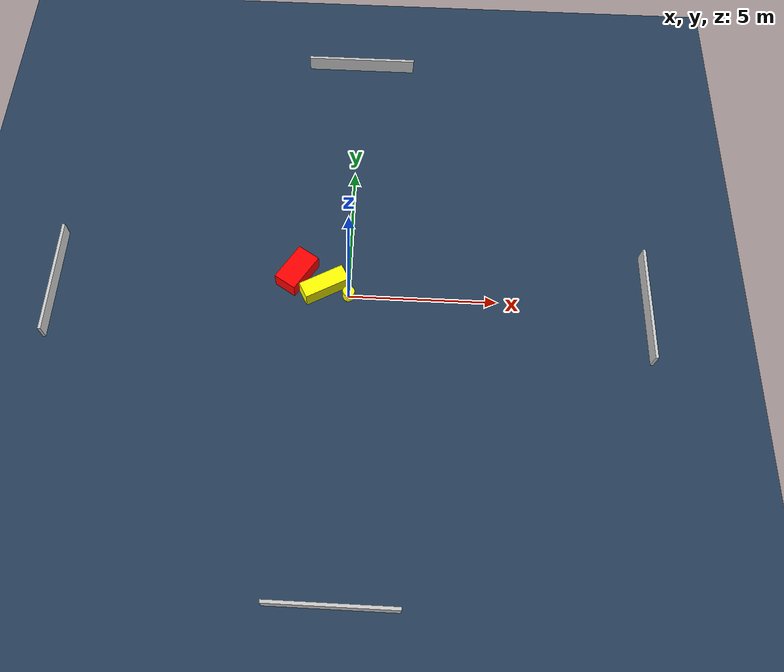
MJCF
<?xml version="1.0" ?>
<mujoco model="generated_environment">
  <option timestep="0.01" integrator="RK4" cone="elliptic"/>
  <default>
    <geom density="1"/>
  </default>
  <asset>
    <texture builtin="gradient" height="3072" name="skybox" rgb1="0.3 0.5 0.7" rgb2="0 0 0" type="skybox" width="512"/>
    <texture builtin="checker" height="300" name="groundplane" rgb1="0.2 0.3 0.4" rgb2="0.1 0.2 0.3" type="2d" width="300"/>
    <material name="groundplane" reflectance="0.2" texrepeat="5 5" texture="groundplane"/>
  </asset>
  <worldbody>
    <light dir="0 0 -1" directional="true" pos="0 0 1.5"/>
    <geom condim="3" friction="0.5 0.005 0.001" material="groundplane" name="floor" pos="0 0 0" size="0 0 0.05" type="plane"/>
    <body name="walls">
      <geom name="wall_1" condim="4" pos="-10.0 0.0 0.3" rgba="0.800000011920929 0.800000011920929 0.800000011920929 1.0" size="0.05 2.0 0.3" type="box"/>
      <geom name="wall_2" condim="4" pos="10.0 0.0 0.3" rgba="0.800000011920929 0.800000011920929 0.800000011920929 1.0" size="0.05 2.0 0.3" type="box"/>
      <geom name="wall_3" condim="4" pos="0.0 -10.0 0.3" rgba="0.800000011920929 0.800000011920929 0.800000011920929 1.0" size="2.0 0.05 0.3" type="box"/>
      <geom name="wall_4" condim="4" pos="0.0 10.0 0.3" rgba="0.800000011920929 0.800000011920929 0.800000011920929 1.0" size="2.0 0.05 0.3" type="box"/>
    </body>
    <body name="robot">
      <joint name="joint_x" type="slide" pos="0 0 0" axis="1 0 0"/>
      <joint name="joint_y" type="slide" pos="0 0 0" axis="0 1 0"/>
      <geom name="robot" type="cylinder" pos="0.0 0.0 0.2" size="0.2 0.2 0.0" mass="5.0" friction="1.0 0.005 0.0001" condim="4" rgba="1.0 1.0 0.0 1.0"/>
    </body>
    <body name="obstacle_1_movable">
      <geom name="obstacle_1_movable" condim="4" pos="-0.8340761785531025 0.238898452657115 0.3" euler="0 0 28.97274225403615" friction="0.0 0.005 0.001" rgba="1.0 1.0 0.0 1.0" size="0.7951305790891503 0.28893557799979475 0.3" type="box" mass="0.1"/>
      <joint type="free"/>
    </body>
    <body name="obstacle_2_static">
      <geom name="obstacle_2_static" condim="4" pos="-1.7911828029323191 0.7241882155161457 0.3" euler="0 0 237.590938313106" friction="0.0 0.005 0.001" rgba="1.0 0.0 0.0 1.0" size="0.6951559376123847 0.4039498825742335 0.3" type="box"/>
    </body>
  </worldbody>
  <actuator>
    <motor name="actuator_x" joint="joint_x" gear="1" ctrlrange="-1 1"/>
    <motor name="actuator_y" joint="joint_y" gear="1" ctrlrange="-1 1"/>
  </actuator>
</mujoco>
